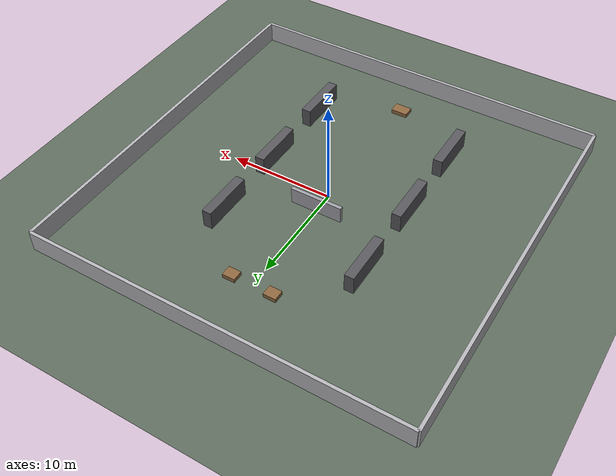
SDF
<?xml version="1.0" ?>
<sdf version='1.10'>
  <world name='warehouse_offline'>
    <gravity>0 0 -9.8</gravity>
    <physics type='ode'>
      <max_step_size>0.004</max_step_size>
      <real_time_factor>1</real_time_factor>
      <real_time_update_rate>250</real_time_update_rate>
      <max_contacts>20</max_contacts>
    </physics>

    <plugin name='gz::sim::systems::Physics' filename='gz-sim-physics-system'/>
    <plugin name='gz::sim::systems::UserCommands' filename='gz-sim-user-commands-system'/>
    <plugin name='gz::sim::systems::SceneBroadcaster' filename='gz-sim-scene-broadcaster-system'/>
    <plugin name='gz::sim::systems::Contact' filename='gz-sim-contact-system'/>
    <plugin name='gz::sim::systems::Imu' filename='gz-sim-imu-system'/>
    <plugin name='gz::sim::systems::Magnetometer' filename='gz-sim-magnetometer-system'/>
    <plugin name='gz::sim::systems::AirPressure' filename='gz-sim-air-pressure-system'/>
    <plugin name='gz::sim::systems::ApplyLinkWrench' filename='gz-sim-apply-link-wrench-system'/>
    <plugin name='gz::sim::systems::NavSat' filename='gz-sim-navsat-system'/>
    <plugin name='gz::sim::systems::Sensors' filename='gz-sim-sensors-system'>
      <render_engine>ogre2</render_engine>
    </plugin>

    <spherical_coordinates>
      <surface_model>EARTH_WGS84</surface_model>
      <world_frame_orientation>ENU</world_frame_orientation>
      <latitude_deg>33.199840</latitude_deg>
      <longitude_deg>-86.299795</longitude_deg>
      <elevation>150</elevation>
      <heading_deg>0</heading_deg>
    </spherical_coordinates>

    <scene>
      <ambient>0.45 0.45 0.45 1</ambient>
      <background>0.65 0.78 0.90 1</background>
      <shadows>false</shadows>
      <grid>false</grid>
    </scene>
    <atmosphere type='adiabatic'/>

    <model name='ground_plane'>
      <static>true</static>
      <link name='link'>
        <collision name='collision'>
          <geometry>
            <plane>
              <normal>0 0 1</normal>
              <size>120 120</size>
            </plane>
          </geometry>
        </collision>
        <visual name='visual'>
          <cast_shadows>false</cast_shadows>
          <geometry>
            <plane>
              <normal>0 0 1</normal>
              <size>120 120</size>
            </plane>
          </geometry>
          <material>
            <diffuse>0.36 0.42 0.36 1</diffuse>
            <specular>0 0 0 1</specular>
          </material>
        </visual>
      </link>
    </model>

    <model name='wall_north'>
      <static>true</static>
      <pose>0 18 1 0 0 0</pose>
      <link name='link'>
        <collision name='collision'>
          <geometry><box><size>36 0.3 2</size></box></geometry>
        </collision>
        <visual name='visual'>
          <geometry><box><size>36 0.3 2</size></box></geometry>
          <material><diffuse>0.7 0.7 0.72 1</diffuse></material>
        </visual>
      </link>
    </model>

    <model name='wall_south'>
      <static>true</static>
      <pose>0 -18 1 0 0 0</pose>
      <link name='link'>
        <collision name='collision'>
          <geometry><box><size>36 0.3 2</size></box></geometry>
        </collision>
        <visual name='visual'>
          <geometry><box><size>36 0.3 2</size></box></geometry>
          <material><diffuse>0.7 0.7 0.72 1</diffuse></material>
        </visual>
      </link>
    </model>

    <model name='wall_east'>
      <static>true</static>
      <pose>18 0 1 0 0 0</pose>
      <link name='link'>
        <collision name='collision'>
          <geometry><box><size>0.3 36 2</size></box></geometry>
        </collision>
        <visual name='visual'>
          <geometry><box><size>0.3 36 2</size></box></geometry>
          <material><diffuse>0.7 0.7 0.72 1</diffuse></material>
        </visual>
      </link>
    </model>

    <model name='wall_west'>
      <static>true</static>
      <pose>-18 0 1 0 0 0</pose>
      <link name='link'>
        <collision name='collision'>
          <geometry><box><size>0.3 36 2</size></box></geometry>
        </collision>
        <visual name='visual'>
          <geometry><box><size>0.3 36 2</size></box></geometry>
          <material><diffuse>0.7 0.7 0.72 1</diffuse></material>
        </visual>
      </link>
    </model>

    <model name='shelf_row_left_1'>
      <static>true</static>
      <pose>-7 -10 0.9 0 0 0</pose>
      <link name='link'>
        <collision name='collision'>
          <geometry><box><size>0.9 5.0 1.8</size></box></geometry>
        </collision>
        <visual name='visual'>
          <geometry><box><size>0.9 5.0 1.8</size></box></geometry>
          <material><diffuse>0.34 0.34 0.36 1</diffuse></material>
        </visual>
      </link>
    </model>

    <model name='shelf_row_left_2'>
      <static>true</static>
      <pose>-7 -2 0.9 0 0 0</pose>
      <link name='link'>
        <collision name='collision'>
          <geometry><box><size>0.9 5.0 1.8</size></box></geometry>
        </collision>
        <visual name='visual'>
          <geometry><box><size>0.9 5.0 1.8</size></box></geometry>
          <material><diffuse>0.34 0.34 0.36 1</diffuse></material>
        </visual>
      </link>
    </model>

    <model name='shelf_row_left_3'>
      <static>true</static>
      <pose>-7 6 0.9 0 0 0</pose>
      <link name='link'>
        <collision name='collision'>
          <geometry><box><size>0.9 5.0 1.8</size></box></geometry>
        </collision>
        <visual name='visual'>
          <geometry><box><size>0.9 5.0 1.8</size></box></geometry>
          <material><diffuse>0.34 0.34 0.36 1</diffuse></material>
        </visual>
      </link>
    </model>

    <model name='shelf_row_right_1'>
      <static>true</static>
      <pose>7 -10 0.9 0 0 0</pose>
      <link name='link'>
        <collision name='collision'>
          <geometry><box><size>0.9 5.0 1.8</size></box></geometry>
        </collision>
        <visual name='visual'>
          <geometry><box><size>0.9 5.0 1.8</size></box></geometry>
          <material><diffuse>0.34 0.34 0.36 1</diffuse></material>
        </visual>
      </link>
    </model>

    <model name='shelf_row_right_2'>
      <static>true</static>
      <pose>7 -2 0.9 0 0 0</pose>
      <link name='link'>
        <collision name='collision'>
          <geometry><box><size>0.9 5.0 1.8</size></box></geometry>
        </collision>
        <visual name='visual'>
          <geometry><box><size>0.9 5.0 1.8</size></box></geometry>
          <material><diffuse>0.34 0.34 0.36 1</diffuse></material>
        </visual>
      </link>
    </model>

    <model name='shelf_row_right_3'>
      <static>true</static>
      <pose>7 6 0.9 0 0 0</pose>
      <link name='link'>
        <collision name='collision'>
          <geometry><box><size>0.9 5.0 1.8</size></box></geometry>
        </collision>
        <visual name='visual'>
          <geometry><box><size>0.9 5.0 1.8</size></box></geometry>
          <material><diffuse>0.34 0.34 0.36 1</diffuse></material>
        </visual>
      </link>
    </model>

    <model name='pallet_stack_1'>
      <static>true</static>
      <pose>-2 12 0.2 0 0 0</pose>
      <link name='link'>
        <collision name='collision'>
          <geometry><box><size>1.2 1.0 0.4</size></box></geometry>
        </collision>
        <visual name='visual'>
          <geometry><box><size>1.2 1.0 0.4</size></box></geometry>
          <material><diffuse>0.55 0.40 0.25 1</diffuse></material>
        </visual>
      </link>
    </model>

    <model name='pallet_stack_2'>
      <static>true</static>
      <pose>2 12 0.2 0 0 0</pose>
      <link name='link'>
        <collision name='collision'>
          <geometry><box><size>1.2 1.0 0.4</size></box></geometry>
        </collision>
        <visual name='visual'>
          <geometry><box><size>1.2 1.0 0.4</size></box></geometry>
          <material><diffuse>0.55 0.40 0.25 1</diffuse></material>
        </visual>
      </link>
    </model>

    <model name='pallet_stack_3'>
      <static>true</static>
      <pose>0 -14 0.2 0 0 0</pose>
      <link name='link'>
        <collision name='collision'>
          <geometry><box><size>1.6 1.1 0.4</size></box></geometry>
        </collision>
        <visual name='visual'>
          <geometry><box><size>1.6 1.1 0.4</size></box></geometry>
          <material><diffuse>0.55 0.40 0.25 1</diffuse></material>
        </visual>
      </link>
    </model>

    <model name='divider_1'>
      <static>true</static>
      <pose>0 2 0.8 0 0 0</pose>
      <link name='link'>
        <collision name='collision'>
          <geometry><box><size>5.0 0.35 1.6</size></box></geometry>
        </collision>
        <visual name='visual'>
          <geometry><box><size>5.0 0.35 1.6</size></box></geometry>
          <material><diffuse>0.62 0.62 0.65 1</diffuse></material>
        </visual>
      </link>
    </model>

    <light name='warehouse_sun' type='directional'>
      <pose>-5 -3 10 0 0 0</pose>
      <cast_shadows>false</cast_shadows>
      <intensity>1</intensity>
      <direction>0 0 -1</direction>
      <diffuse>1 1 1 1</diffuse>
      <specular>1 1 1 1</specular>
      <attenuation>
        <range>50</range>
        <linear>0</linear>
        <constant>1</constant>
        <quadratic>0</quadratic>
      </attenuation>
    </light>
  </world>
</sdf>
